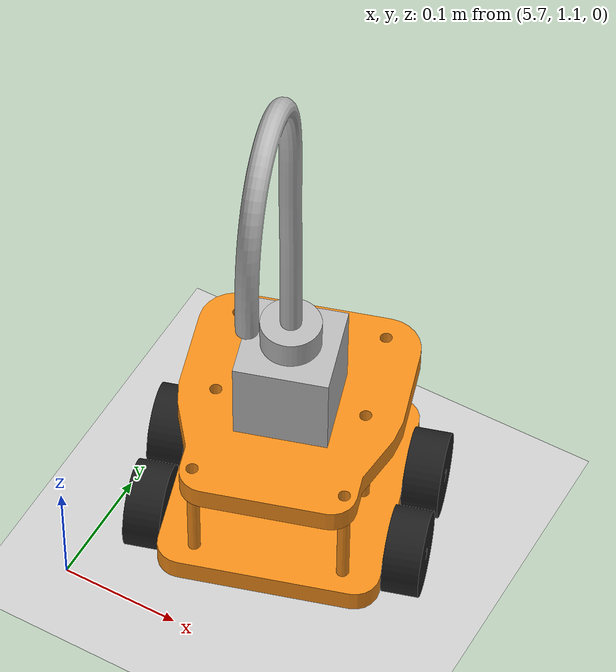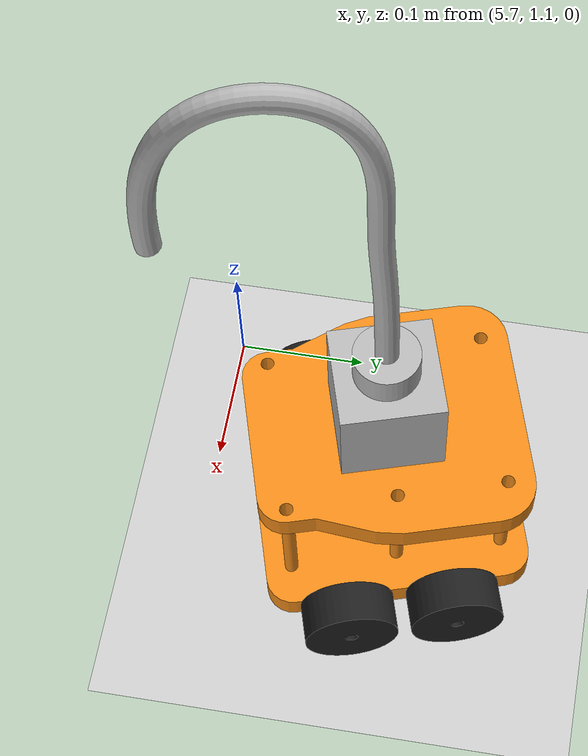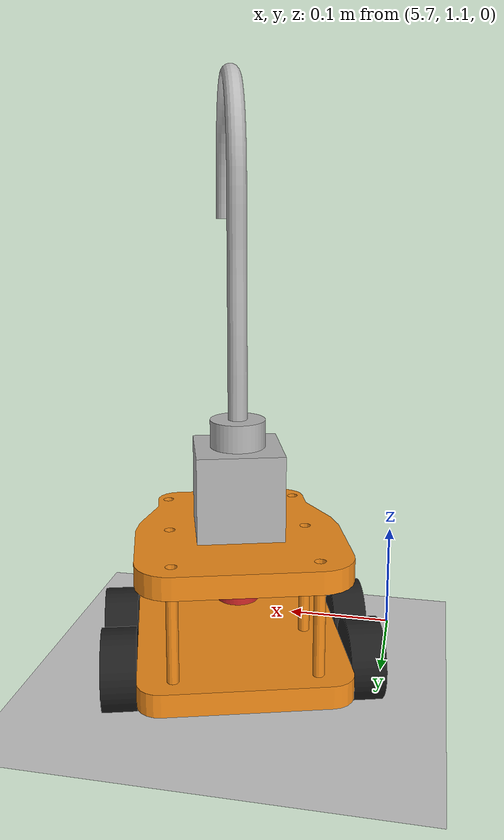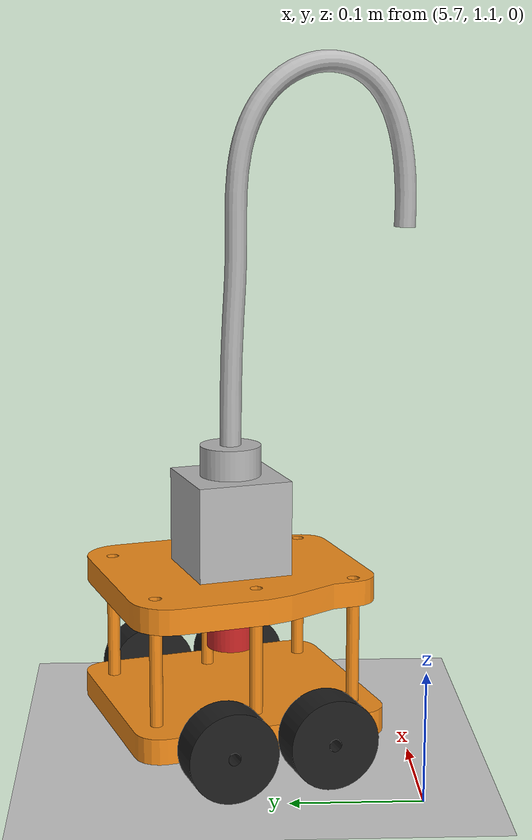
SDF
<sdf version="1.7">
 <world name="default">
  <light name="sun" type="directional">
   <pose>0 0 10 0 -0 0</pose>
   <diffuse>0.8 0.8 0.8 1</diffuse>
   <specular>0.2 0.2 0.2 1</specular>
   <attenuation>
    <range>1000</range>
    <constant>0.9</constant>
    <linear>0.01</linear>
    <quadratic>0.001</quadratic>
   </attenuation>
   <direction>-0.5 0.1 -0.9</direction>
   <spot><inner_angle>0</inner_angle><outer_angle>0</outer_angle><falloff>0</falloff></spot>
  </light>
  <model name="ground_plane">
   <static>1</static>
   <link name="link">
    <collision name="collision">
     <geometry><plane><normal>0 0 1</normal><size>100 100</size></plane></geometry>
     <surface><friction><ode><mu>100</mu><mu2>50</mu2></ode></friction></surface>
    </collision>
    <visual name="visual">
     <cast_shadows>0</cast_shadows>
     <geometry><plane><normal>0 0 1</normal><size>100 100</size></plane></geometry>
     <material>
      <script><uri>file://media/materials/scripts/gazebo.material</uri><name>Gazebo/Grey</name></script>
     </material>
    </visual>
   </link>
  </model>
  <gravity>0 0 -9.8</gravity>
  <magnetic_field>6e-06 2.3e-05 -4.2e-05</magnetic_field>
  <atmosphere type="adiabatic"/>
  <physics type="ode">
   <max_step_size>0.001</max_step_size>
   <real_time_factor>1</real_time_factor>
   <real_time_update_rate>1000</real_time_update_rate>
  </physics>
  <scene><ambient>0.4 0.4 0.4 1</ambient><background>0.7 0.7 0.7 1</background><shadows>1</shadows></scene>
  <audio><device>default</device></audio>
  <spherical_coordinates>
   <surface_model>EARTH_WGS84</surface_model>
   <latitude_deg>0</latitude_deg>
   <longitude_deg>0</longitude_deg>
   <elevation>0</elevation>
   <heading_deg>0</heading_deg>
  </spherical_coordinates>
  <model name="diff_drive_robo">
   <link name="base_link">
    <inertial>
     <pose>0.001312 0 0.081235 0 -0 0</pose>
     <mass>2.01686</mass>
     <inertia>
      <ixx>0.0229155</ixx>
      <ixy>-1.22929e-08</ixy>
      <ixz>-0.00200892</ixz>
      <iyy>0.0245291</iyy>
      <iyz>-6.44684e-08</iyz>
      <izz>0.00873454</izz>
     </inertia>
    </inertial>
    <collision name="base_link_fixed_joint_lump__connecting_rods_collision">
     <pose>0 0 0.03 0 -0 0</pose>
     <geometry>
      <mesh>
       <scale>1 1 1</scale>
       <uri>file:///home/stuti/new/install/frobo/share/frobo/meshes/connecting_rods.STL</uri>
      </mesh>
     </geometry>
    </collision>
    <collision name="base_link_fixed_joint_lump__upper_floor_collision_1">
     <pose>-0.004749 0 0.08 0 -0 0</pose>
     <geometry>
      <mesh>
       <scale>1 1 1</scale>
       <uri>file:///home/stuti/new/install/frobo/share/frobo/meshes/upper_floor.STL</uri>
      </mesh>
     </geometry>
    </collision>
    <collision name="base_link_fixed_joint_lump__lidar_collision_2">
     <pose>0 0 0.0575 0 -0 0</pose>
     <geometry>
      <mesh><scale>1 1 1</scale><uri>file:///home/stuti/new/install/frobo/share/frobo/meshes/lidar.STL</uri></mesh>
     </geometry>
    </collision>
    <collision name="base_link_fixed_joint_lump__sampler_box_collision_3">
     <pose>0 0 0.175 0 -0 0</pose>
     <geometry>
      <mesh>
       <scale>1 1 1</scale>
       <uri>file:///home/stuti/new/install/frobo/share/frobo/meshes/sampler_box.STL</uri>
      </mesh>
     </geometry>
    </collision>
    <collision name="base_link_fixed_joint_lump__sampler_cylinder_collision_4">
     <pose>0 0 0.187 0 -0 0</pose>
     <geometry>
      <mesh>
       <scale>1 1 1</scale>
       <uri>file:///home/stuti/new/install/frobo/share/frobo/meshes/sampler_cylinder.STL</uri>
      </mesh>
     </geometry>
    </collision>
    <collision name="base_link_fixed_joint_lump__sampler_u_collision_5">
     <pose>0.052356 0.000434 0.38283 0 -0 0</pose>
     <geometry>
      <mesh>
       <scale>1 1 1</scale>
       <uri>file:///home/stuti/new/install/frobo/share/frobo/meshes/sampler_u.STL</uri>
      </mesh>
     </geometry>
    </collision>
    <collision name="base_link_fixed_joint_lump__chassis_collision_6">
     <geometry>
      <mesh>
       <scale>1 1 1</scale>
       <uri>file:///home/stuti/new/install/frobo/share/frobo/meshes/base_link.STL</uri>
      </mesh>
     </geometry>
    </collision>
    <visual name="base_link_fixed_joint_lump__connecting_rods_visual">
     <pose>0 0 0.03 0 -0 0</pose>
     <geometry>
      <mesh>
       <scale>1 1 1</scale>
       <uri>file:///home/stuti/new/install/frobo/share/frobo/meshes/connecting_rods.STL</uri>
      </mesh>
     </geometry>
     <material>
      <script><name>Gazebo/Orange</name><uri>file://media/materials/scripts/gazebo.material</uri></script>
     </material>
    </visual>
    <visual name="base_link_fixed_joint_lump__upper_floor_visual_1">
     <pose>-0.004749 0 0.08 0 -0 0</pose>
     <geometry>
      <mesh>
       <scale>1 1 1</scale>
       <uri>file:///home/stuti/new/install/frobo/share/frobo/meshes/upper_floor.STL</uri>
      </mesh>
     </geometry>
     <material>
      <script><name>Gazebo/Orange</name><uri>file://media/materials/scripts/gazebo.material</uri></script>
     </material>
    </visual>
    <visual name="base_link_fixed_joint_lump__lidar_visual_2">
     <pose>0 0 0.0575 0 -0 0</pose>
     <geometry>
      <mesh><scale>1 1 1</scale><uri>file:///home/stuti/new/install/frobo/share/frobo/meshes/lidar.STL</uri></mesh>
     </geometry>
     <material>
      <script><name>Gazebo/Red</name><uri>file://media/materials/scripts/gazebo.material</uri></script>
     </material>
    </visual>
    <visual name="base_link_fixed_joint_lump__sampler_box_visual_3">
     <pose>0 0 0.175 0 -0 0</pose>
     <geometry>
      <mesh>
       <scale>1 1 1</scale>
       <uri>file:///home/stuti/new/install/frobo/share/frobo/meshes/sampler_box.STL</uri>
      </mesh>
     </geometry>
    </visual>
    <visual name="base_link_fixed_joint_lump__sampler_cylinder_visual_4">
     <pose>0 0 0.187 0 -0 0</pose>
     <geometry>
      <mesh>
       <scale>1 1 1</scale>
       <uri>file:///home/stuti/new/install/frobo/share/frobo/meshes/sampler_cylinder.STL</uri>
      </mesh>
     </geometry>
    </visual>
    <visual name="base_link_fixed_joint_lump__sampler_u_visual_5">
     <pose>0.052356 0.000434 0.38283 0 -0 0</pose>
     <geometry>
      <mesh>
       <scale>1 1 1</scale>
       <uri>file:///home/stuti/new/install/frobo/share/frobo/meshes/sampler_u.STL</uri>
      </mesh>
     </geometry>
    </visual>
    <visual name="base_link_fixed_joint_lump__chassis_visual_6">
     <geometry>
      <mesh>
       <scale>1 1 1</scale>
       <uri>file:///home/stuti/new/install/frobo/share/frobo/meshes/base_link.STL</uri>
      </mesh>
     </geometry>
     <material>
      <script><name>Gazebo/Orange</name><uri>file://media/materials/scripts/gazebo.material</uri></script>
     </material>
    </visual>
    <sensor name="laser" type="ray">
     <visualize>1</visualize>
     <update_rate>10</update_rate>
     <ray>
      <scan>
       <horizontal>
        <samples>360</samples>
        <resolution>1</resolution>
        <min_angle>-3.14</min_angle>
        <max_angle>3.14</max_angle>
       </horizontal>
       <vertical><samples>1</samples><min_angle>0</min_angle><max_angle>0</max_angle></vertical>
      </scan>
      <range><min>0.2</min><max>1.2</max><resolution>0.01</resolution></range>
     </ray>
     <plugin name="laser_controller" filename="libgazebo_ros_ray_sensor.so">
      <ros><argument>~/out:=scan</argument></ros>
      <output_type>sensor_msgs/LaserScan</output_type>
      <frame_name>lidar</frame_name>
     </plugin>
     <pose>0 0 0.0575 0 -0 0</pose>
    </sensor>
   </link>
   <joint name="back_left_wheel_joint" type="revolute">
    <pose relative_to="base_link">-0.038 0.105 -0.01 1.5708 -0 -3.14159</pose>
    <parent>base_link</parent>
    <child>back_left_wheel</child>
    <axis>
     <xyz>0 0 1</xyz>
     <limit><effort>0</effort><velocity>0</velocity><lower>-1e+16</lower><upper>1e+16</upper></limit>
     <dynamics><spring_reference>0</spring_reference><spring_stiffness>0</spring_stiffness></dynamics>
    </axis>
   </joint>
   <link name="back_left_wheel">
    <pose relative_to="back_left_wheel_joint">0 0 0 0 -0 0</pose>
    <inertial>
     <mass>0.1131</mass>
     <inertia>
      <ixx>4.3825e-05</ixx>
      <ixy>1.357e-37</ixy>
      <ixz>-1.1952e-37</ixz>
      <iyy>4.3825e-05</iyy>
      <iyz>-5.0963e-38</iyz>
      <izz>7.0686e-05</izz>
     </inertia>
    </inertial>
    <collision name="back_left_wheel_collision">
     <geometry>
      <mesh>
       <scale>1 1 1</scale>
       <uri>file:///home/stuti/new/install/frobo/share/frobo/meshes/back_left_wheel.STL</uri>
      </mesh>
     </geometry>
     <surface><friction><ode><mu>0.2</mu><mu2>0.2</mu2></ode></friction></surface>
    </collision>
    <visual name="back_left_wheel_visual">
     <geometry>
      <mesh>
       <scale>1 1 1</scale>
       <uri>file:///home/stuti/new/install/frobo/share/frobo/meshes/back_left_wheel.STL</uri>
      </mesh>
     </geometry>
     <material>
      <script><name>Gazebo/Black</name><uri>file://media/materials/scripts/gazebo.material</uri></script>
     </material>
    </visual>
   </link>
   <joint name="back_right_wheel_joint" type="revolute">
    <pose relative_to="base_link">-0.038 -0.105 -0.01 1.5708 -0 0</pose>
    <parent>base_link</parent>
    <child>back_right_wheel</child>
    <axis>
     <xyz>0 0 -1</xyz>
     <limit><effort>0</effort><velocity>0</velocity><lower>-1e+16</lower><upper>1e+16</upper></limit>
     <dynamics><spring_reference>0</spring_reference><spring_stiffness>0</spring_stiffness></dynamics>
    </axis>
   </joint>
   <link name="back_right_wheel">
    <pose relative_to="back_right_wheel_joint">0 0 0 0 -0 0</pose>
    <inertial>
     <mass>0.1131</mass>
     <inertia>
      <ixx>4.3825e-05</ixx>
      <ixy>-1.357e-37</ixy>
      <ixz>1.1952e-37</ixz>
      <iyy>4.3825e-05</iyy>
      <iyz>1.6941e-21</iyz>
      <izz>7.0686e-05</izz>
     </inertia>
    </inertial>
    <collision name="back_right_wheel_collision">
     <geometry>
      <mesh>
       <scale>1 1 1</scale>
       <uri>file:///home/stuti/new/install/frobo/share/frobo/meshes/back_right_wheel.STL</uri>
      </mesh>
     </geometry>
     <surface><friction><ode><mu>0.2</mu><mu2>0.2</mu2></ode></friction></surface>
    </collision>
    <visual name="back_right_wheel_visual">
     <geometry>
      <mesh>
       <scale>1 1 1</scale>
       <uri>file:///home/stuti/new/install/frobo/share/frobo/meshes/back_right_wheel.STL</uri>
      </mesh>
     </geometry>
     <material>
      <script><name>Gazebo/Black</name><uri>file://media/materials/scripts/gazebo.material</uri></script>
     </material>
    </visual>
   </link>
   <joint name="front_left_wheel_joint" type="revolute">
    <pose relative_to="base_link">0.042 0.105 -0.01 1.5708 -0 -3.14159</pose>
    <parent>base_link</parent>
    <child>front_left_wheel</child>
    <axis>
     <xyz>0 0 1</xyz>
     <limit><effort>0</effort><velocity>0</velocity><lower>-1e+16</lower><upper>1e+16</upper></limit>
     <dynamics><spring_reference>0</spring_reference><spring_stiffness>0</spring_stiffness></dynamics>
    </axis>
   </joint>
   <link name="front_left_wheel">
    <pose relative_to="front_left_wheel_joint">0 0 0 0 -0 0</pose>
    <inertial>
     <mass>0.1131</mass>
     <inertia>
      <ixx>4.3825e-05</ixx>
      <ixy>4.2907e-37</ixy>
      <ixz>1.915e-38</ixz>
      <iyy>4.3825e-05</iyy>
      <iyz>-5.1473e-38</iyz>
      <izz>7.0686e-05</izz>
     </inertia>
    </inertial>
    <collision name="front_left_wheel_collision">
     <geometry>
      <mesh>
       <scale>1 1 1</scale>
       <uri>file:///home/stuti/new/install/frobo/share/frobo/meshes/front_left_wheel.STL</uri>
      </mesh>
     </geometry>
     <surface><friction><ode><mu>0.2</mu><mu2>0.2</mu2></ode></friction></surface>
    </collision>
    <visual name="front_left_wheel_visual">
     <geometry>
      <mesh>
       <scale>1 1 1</scale>
       <uri>file:///home/stuti/new/install/frobo/share/frobo/meshes/front_left_wheel.STL</uri>
      </mesh>
     </geometry>
     <material>
      <script><name>Gazebo/Black</name><uri>file://media/materials/scripts/gazebo.material</uri></script>
     </material>
    </visual>
   </link>
   <joint name="front_right_wheel_joint" type="revolute">
    <pose relative_to="base_link">0.042 -0.105 -0.01 1.5708 -0 0</pose>
    <parent>base_link</parent>
    <child>front_right_wheel</child>
    <axis>
     <xyz>0 0 -1</xyz>
     <limit><effort>0</effort><velocity>0</velocity><lower>-1e+16</lower><upper>1e+16</upper></limit>
     <dynamics><spring_reference>0</spring_reference><spring_stiffness>0</spring_stiffness></dynamics>
    </axis>
   </joint>
   <link name="front_right_wheel">
    <pose relative_to="front_right_wheel_joint">0 0 0 0 -0 0</pose>
    <inertial>
     <mass>0.1131</mass>
     <inertia>
      <ixx>4.3825e-05</ixx>
      <ixy>-4.2907e-37</ixy>
      <ixz>-2.4918e-37</ixz>
      <iyy>4.3825e-05</iyy>
      <iyz>-1.6941e-21</iyz>
      <izz>7.0686e-05</izz>
     </inertia>
    </inertial>
    <collision name="front_right_wheel_collision">
     <geometry>
      <mesh>
       <scale>1 1 1</scale>
       <uri>file:///home/stuti/new/install/frobo/share/frobo/meshes/front_right_wheel.STL</uri>
      </mesh>
     </geometry>
     <surface><friction><ode><mu>0.2</mu><mu2>0.2</mu2></ode></friction></surface>
    </collision>
    <visual name="front_right_wheel_visual">
     <geometry>
      <mesh>
       <scale>1 1 1</scale>
       <uri>file:///home/stuti/new/install/frobo/share/frobo/meshes/front_right_wheel.STL</uri>
      </mesh>
     </geometry>
     <material>
      <script><name>Gazebo/Black</name><uri>file://media/materials/scripts/gazebo.material</uri></script>
     </material>
    </visual>
   </link>
   <static>0</static>
   <plugin name="skid_steer_drive" filename="libgazebo_ros_diff_drive.so">
    <num_wheel_pairs>2</num_wheel_pairs>
    <left_joint>front_left_wheel_joint</left_joint>
    <right_joint>front_right_wheel_joint</right_joint>
    <left_joint>back_left_wheel_joint</left_joint>
    <right_joint>back_right_wheel_joint</right_joint>
    <wheel_separation>0.210</wheel_separation>
    <wheel_separation>0.210</wheel_separation>
    <max_wheel_torque>5</max_wheel_torque>
    <max_wheel_torque>5</max_wheel_torque>
    <publish_odom>1</publish_odom>
    <publish_odom_tf>1</publish_odom_tf>
    <publish_wheel_tf>1</publish_wheel_tf>
    <odometry_frame>odom</odometry_frame>
    <robot_base_frame>base_link</robot_base_frame>
   </plugin>
   <pose>5.82685 1.23921 0.044967 -0.000232 0.000105 -1.27118</pose>
  </model>
 </world>
</sdf>
